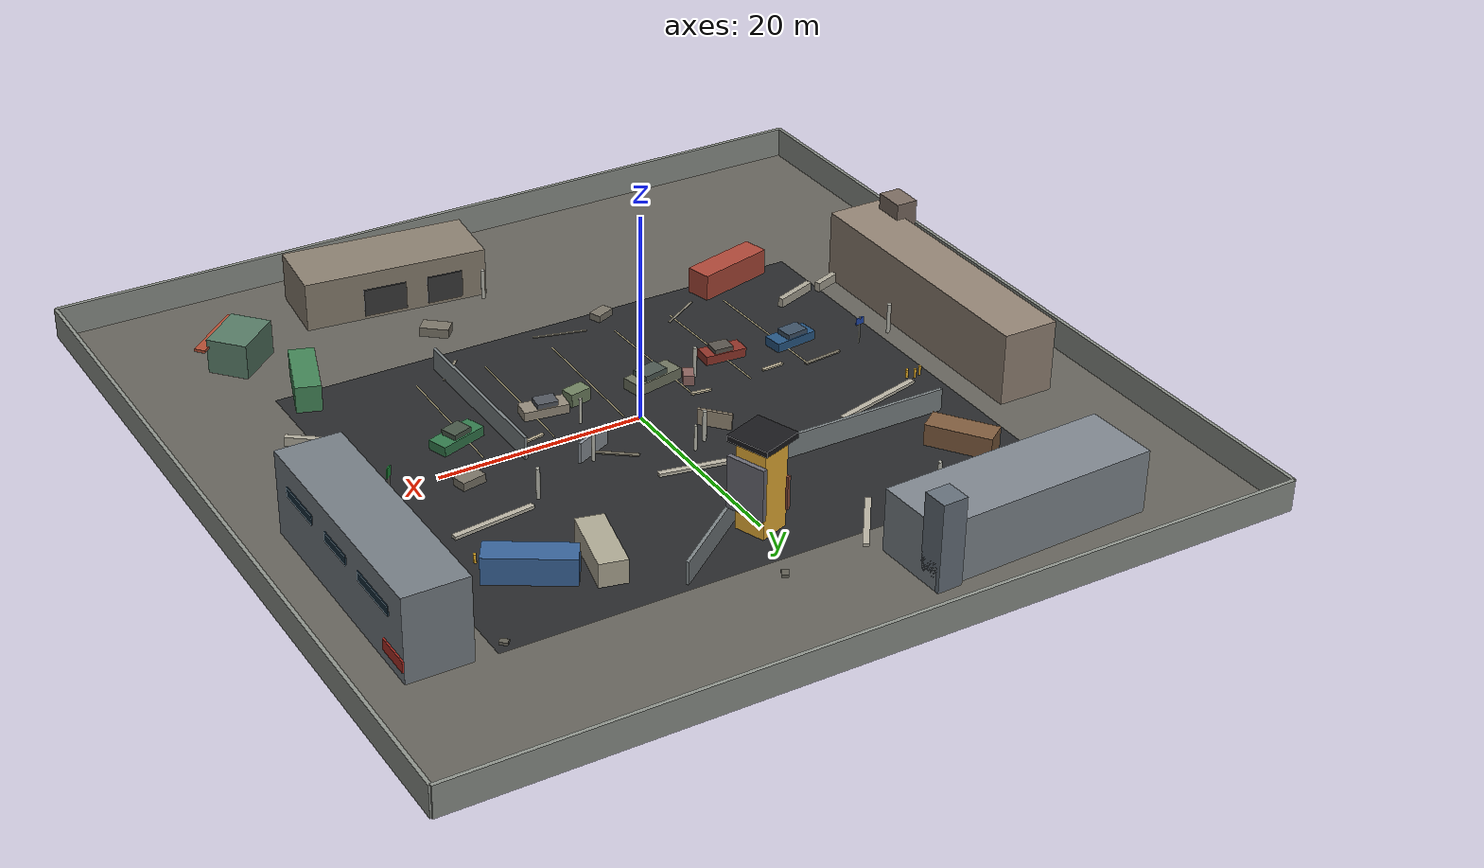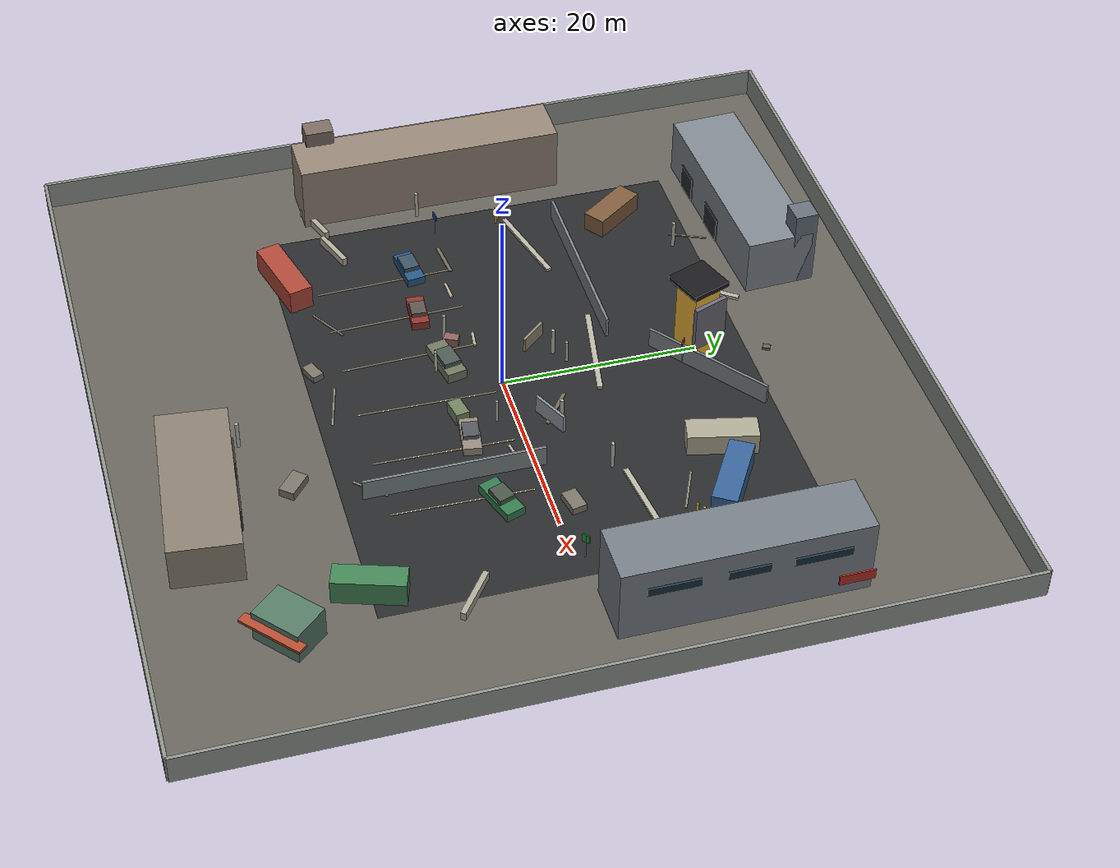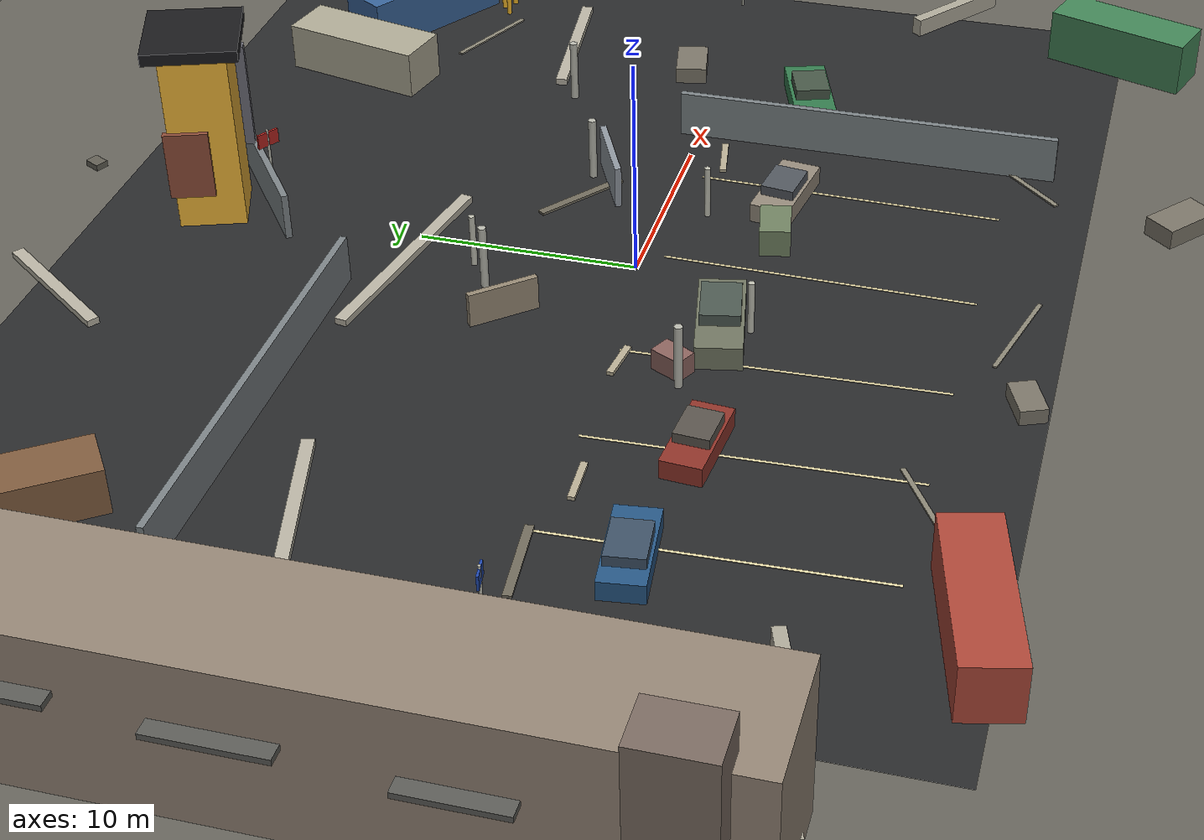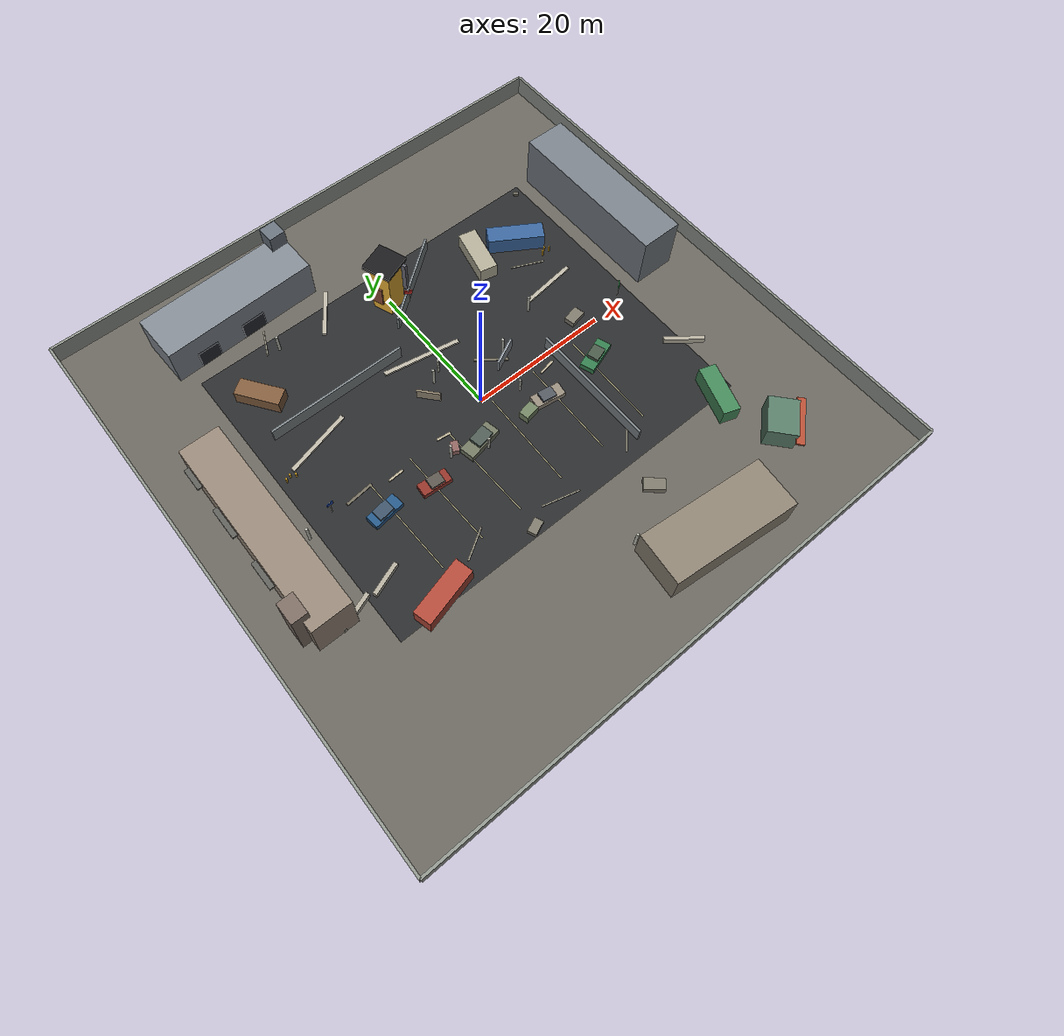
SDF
<?xml version="1.0" ?>
<sdf version="1.9">
  <world name="enhanced_lunar_test">
    <physics name="fast_stable" type="ignored">
      <max_step_size>0.004</max_step_size>
      <real_time_factor>1.0</real_time_factor>
    </physics>

    <plugin filename="gz-sim-physics-system" name="gz::sim::systems::Physics"/>
    <plugin filename="gz-sim-user-commands-system" name="gz::sim::systems::UserCommands"/>
    <plugin filename="gz-sim-scene-broadcaster-system" name="gz::sim::systems::SceneBroadcaster"/>
    <plugin filename="gz-sim-sensors-system" name="gz::sim::systems::Sensors">
      <render_engine>ogre</render_engine>
    </plugin>
    <plugin filename="gz-sim-imu-system" name="gz::sim::systems::Imu"/>

    <gravity>0 0 -9.81</gravity>

    <scene>
      <ambient>0.35 0.35 0.36 1</ambient>
      <background>0.03 0.035 0.045 1</background>
      <grid>true</grid>
      <shadows>true</shadows>
    </scene>

    <light type="directional" name="low_sun">
      <cast_shadows>true</cast_shadows>
      <pose>0 0 70 0 0 0</pose>
      <diffuse>0.78 0.76 0.72 1</diffuse>
      <specular>0.08 0.08 0.08 1</specular>
      <intensity>2.6</intensity>
      <direction>-0.55 0.25 -0.80</direction>
    </light>

    <model name="flat_lunar_test_floor">
      <static>true</static>
      <link name="floor_link">
        <collision name="floor_collision">
          <geometry>
            <box>
              <size>80 80 0.10</size>
            </box>
          </geometry>
        </collision>
        <visual name="floor_visual">
          <geometry>
            <box>
              <size>80 80 0.10</size>
            </box>
          </geometry>
          <material>
            <ambient>0.28 0.28 0.27 1</ambient>
            <diffuse>0.40 0.39 0.36 1</diffuse>
            <specular>0.015 0.015 0.015 1</specular>
          </material>
        </visual>
      </link>
      <pose>0 0 -0.05 0 0 0</pose>
    </model>

    <!-- Near-spawn asymmetric landmarks. These keep the first local map
         observable for point-to-plane scan matching instead of relying on
         distant parallel outer walls. -->
    <model name="spawn_landmark_wall_a">
      <static>true</static>
      <pose>6.5 3.0 1.0 0 0 0.45</pose>
      <link name="wall_link">
        <collision name="collision"><geometry><box><size>4.0 0.30 2.0</size></box></geometry></collision>
        <visual name="visual"><geometry><box><size>4.0 0.30 2.0</size></box></geometry>
          <material><ambient>0.34 0.36 0.38 1</ambient><diffuse>0.56 0.59 0.62 1</diffuse></material>
        </visual>
      </link>
    </model>
    <model name="spawn_landmark_wall_b">
      <static>true</static>
      <pose>-5.0 4.5 0.8 0 0 -0.85</pose>
      <link name="wall_link">
        <collision name="collision"><geometry><box><size>3.2 0.28 1.6</size></box></geometry></collision>
        <visual name="visual"><geometry><box><size>3.2 0.28 1.6</size></box></geometry>
          <material><ambient>0.36 0.34 0.31 1</ambient><diffuse>0.58 0.53 0.45 1</diffuse></material>
        </visual>
      </link>
    </model>
    <model name="spawn_landmark_box_a">
      <static>true</static>
      <pose>3.5 -5.5 0.65 0 0 0.2</pose>
      <link name="box_link">
        <collision name="collision"><geometry><box><size>2.2 1.4 1.3</size></box></geometry></collision>
        <visual name="visual"><geometry><box><size>2.2 1.4 1.3</size></box></geometry>
          <material><ambient>0.28 0.31 0.24 1</ambient><diffuse>0.44 0.51 0.38 1</diffuse></material>
        </visual>
      </link>
    </model>
    <model name="spawn_landmark_box_b">
      <static>true</static>
      <pose>-7.0 -3.5 0.50 0 0 1.1</pose>
      <link name="box_link">
        <collision name="collision"><geometry><box><size>1.5 1.0 1.0</size></box></geometry></collision>
        <visual name="visual"><geometry><box><size>1.5 1.0 1.0</size></box></geometry>
          <material><ambient>0.33 0.25 0.25 1</ambient><diffuse>0.55 0.39 0.37 1</diffuse></material>
        </visual>
      </link>
    </model>
    <model name="spawn_pole_a"><static>true</static><pose>5.0 -2.0 1.25 0 0 0</pose><link name="pole_link"><collision name="collision"><geometry><cylinder><radius>0.14</radius><length>2.5</length></cylinder></geometry></collision><visual name="visual"><geometry><cylinder><radius>0.14</radius><length>2.5</length></cylinder></geometry><material><ambient>0.45 0.45 0.42 1</ambient><diffuse>0.75 0.75 0.70 1</diffuse></material></visual></link></model>
    <model name="spawn_pole_b"><static>true</static><pose>-3.5 -6.0 1.25 0 0 0</pose><link name="pole_link"><collision name="collision"><geometry><cylinder><radius>0.14</radius><length>2.5</length></cylinder></geometry></collision><visual name="visual"><geometry><cylinder><radius>0.14</radius><length>2.5</length></cylinder></geometry><material><ambient>0.45 0.45 0.42 1</ambient><diffuse>0.75 0.75 0.70 1</diffuse></material></visual></link></model>
    <model name="spawn_pole_c"><static>true</static><pose>-1.5 7.0 1.25 0 0 0</pose><link name="pole_link"><collision name="collision"><geometry><cylinder><radius>0.14</radius><length>2.5</length></cylinder></geometry></collision><visual name="visual"><geometry><cylinder><radius>0.14</radius><length>2.5</length></cylinder></geometry><material><ambient>0.45 0.45 0.42 1</ambient><diffuse>0.75 0.75 0.70 1</diffuse></material></visual></link></model>

    <!-- Outer square walls: strong long-range constraints for LiDAR frontend testing. -->
    <model name="north_outer_wall">
      <static>true</static>
      <pose>0 40 1.5 0 0 0</pose>
      <link name="wall_link">
        <collision name="collision"><geometry><box><size>80 0.35 3.0</size></box></geometry></collision>
        <visual name="visual"><geometry><box><size>80 0.35 3.0</size></box></geometry>
          <material><ambient>0.36 0.38 0.37 1</ambient><diffuse>0.55 0.57 0.54 1</diffuse></material>
        </visual>
      </link>
    </model>
    <model name="south_outer_wall">
      <static>true</static>
      <pose>0 -40 1.5 0 0 0</pose>
      <link name="wall_link">
        <collision name="collision"><geometry><box><size>80 0.35 3.0</size></box></geometry></collision>
        <visual name="visual"><geometry><box><size>80 0.35 3.0</size></box></geometry>
          <material><ambient>0.36 0.38 0.37 1</ambient><diffuse>0.55 0.57 0.54 1</diffuse></material>
        </visual>
      </link>
    </model>
    <model name="east_outer_wall">
      <static>true</static>
      <pose>40 0 1.5 0 0 0</pose>
      <link name="wall_link">
        <collision name="collision"><geometry><box><size>0.35 80 3.0</size></box></geometry></collision>
        <visual name="visual"><geometry><box><size>0.35 80 3.0</size></box></geometry>
          <material><ambient>0.36 0.38 0.37 1</ambient><diffuse>0.55 0.57 0.54 1</diffuse></material>
        </visual>
      </link>
    </model>
    <model name="west_outer_wall">
      <static>true</static>
      <pose>-40 0 1.5 0 0 0</pose>
      <link name="wall_link">
        <collision name="collision"><geometry><box><size>0.35 80 3.0</size></box></geometry></collision>
        <visual name="visual"><geometry><box><size>0.35 80 3.0</size></box></geometry>
          <material><ambient>0.36 0.38 0.37 1</ambient><diffuse>0.55 0.57 0.54 1</diffuse></material>
        </visual>
      </link>
    </model>

    <!-- Internal walls form corridors and occlusions without boxing in the spawn area. -->
    <model name="inner_wall_a">
      <static>true</static>
      <pose>-14 12 1.1 0 0 0.0</pose>
      <link name="wall_link">
        <collision name="collision"><geometry><box><size>20 0.30 2.2</size></box></geometry></collision>
        <visual name="visual"><geometry><box><size>20 0.30 2.2</size></box></geometry>
          <material><ambient>0.33 0.35 0.36 1</ambient><diffuse>0.48 0.51 0.52 1</diffuse></material>
        </visual>
      </link>
    </model>
    <model name="inner_wall_b">
      <static>true</static>
      <pose>12 -8 1.1 0 0 1.5708</pose>
      <link name="wall_link">
        <collision name="collision"><geometry><box><size>18 0.30 2.2</size></box></geometry></collision>
        <visual name="visual"><geometry><box><size>18 0.30 2.2</size></box></geometry>
          <material><ambient>0.33 0.35 0.36 1</ambient><diffuse>0.48 0.51 0.52 1</diffuse></material>
        </visual>
      </link>
    </model>
    <model name="inner_wall_c">
      <static>true</static>
      <pose>4 20 1.1 0 0 0.65</pose>
      <link name="wall_link">
        <collision name="collision"><geometry><box><size>14 0.30 2.2</size></box></geometry></collision>
        <visual name="visual"><geometry><box><size>14 0.30 2.2</size></box></geometry>
          <material><ambient>0.33 0.35 0.36 1</ambient><diffuse>0.48 0.51 0.52 1</diffuse></material>
        </visual>
      </link>
    </model>

    <!-- Container-like boxes: asymmetric rectangular features for scan matching. -->
    <model name="container_red_01">
      <static>true</static>
      <pose>-20 -18 1.3 0 0 0.25</pose>
      <link name="container_link">
        <collision name="collision"><geometry><box><size>8.0 2.5 2.6</size></box></geometry></collision>
        <visual name="visual"><geometry><box><size>8.0 2.5 2.6</size></box></geometry>
          <material><ambient>0.42 0.18 0.15 1</ambient><diffuse>0.68 0.28 0.22 1</diffuse></material>
        </visual>
      </link>
    </model>
    <model name="container_blue_02">
      <static>true</static>
      <pose>20 17 1.3 0 0 -0.55</pose>
      <link name="container_link">
        <collision name="collision"><geometry><box><size>8.0 2.5 2.6</size></box></geometry></collision>
        <visual name="visual"><geometry><box><size>8.0 2.5 2.6</size></box></geometry>
          <material><ambient>0.14 0.24 0.36 1</ambient><diffuse>0.22 0.39 0.60 1</diffuse></material>
        </visual>
      </link>
    </model>
    <model name="container_green_03">
      <static>true</static>
      <pose>24 -19 1.3 0 0 1.25</pose>
      <link name="container_link">
        <collision name="collision"><geometry><box><size>7.0 2.4 2.6</size></box></geometry></collision>
        <visual name="visual"><geometry><box><size>7.0 2.4 2.6</size></box></geometry>
          <material><ambient>0.16 0.32 0.22 1</ambient><diffuse>0.26 0.52 0.34 1</diffuse></material>
        </visual>
      </link>
    </model>

    <!-- Pole field: thin vertical landmarks help expose yaw and lateral drift issues. -->
    <model name="pole_01"><static>true</static><pose>-8 -4 1.5 0 0 0</pose><link name="pole_link"><collision name="collision"><geometry><cylinder><radius>0.18</radius><length>3.0</length></cylinder></geometry></collision><visual name="visual"><geometry><cylinder><radius>0.18</radius><length>3.0</length></cylinder></geometry><material><ambient>0.42 0.42 0.40 1</ambient><diffuse>0.72 0.72 0.68 1</diffuse></material></visual></link></model>
    <model name="pole_02"><static>true</static><pose>-3 6 1.5 0 0 0</pose><link name="pole_link"><collision name="collision"><geometry><cylinder><radius>0.18</radius><length>3.0</length></cylinder></geometry></collision><visual name="visual"><geometry><cylinder><radius>0.18</radius><length>3.0</length></cylinder></geometry><material><ambient>0.42 0.42 0.40 1</ambient><diffuse>0.72 0.72 0.68 1</diffuse></material></visual></link></model>
    <model name="pole_03"><static>true</static><pose>7 4 1.5 0 0 0</pose><link name="pole_link"><collision name="collision"><geometry><cylinder><radius>0.18</radius><length>3.0</length></cylinder></geometry></collision><visual name="visual"><geometry><cylinder><radius>0.18</radius><length>3.0</length></cylinder></geometry><material><ambient>0.42 0.42 0.40 1</ambient><diffuse>0.72 0.72 0.68 1</diffuse></material></visual></link></model>
    <model name="pole_04"><static>true</static><pose>14 7 1.5 0 0 0</pose><link name="pole_link"><collision name="collision"><geometry><cylinder><radius>0.18</radius><length>3.0</length></cylinder></geometry></collision><visual name="visual"><geometry><cylinder><radius>0.18</radius><length>3.0</length></cylinder></geometry><material><ambient>0.42 0.42 0.40 1</ambient><diffuse>0.72 0.72 0.68 1</diffuse></material></visual></link></model>
    <model name="pole_05"><static>true</static><pose>-16 23 1.5 0 0 0</pose><link name="pole_link"><collision name="collision"><geometry><cylinder><radius>0.18</radius><length>3.0</length></cylinder></geometry></collision><visual name="visual"><geometry><cylinder><radius>0.18</radius><length>3.0</length></cylinder></geometry><material><ambient>0.42 0.42 0.40 1</ambient><diffuse>0.72 0.72 0.68 1</diffuse></material></visual></link></model>
    <model name="pole_06"><static>true</static><pose>30 6 1.5 0 0 0</pose><link name="pole_link"><collision name="collision"><geometry><cylinder><radius>0.18</radius><length>3.0</length></cylinder></geometry></collision><visual name="visual"><geometry><cylinder><radius>0.18</radius><length>3.0</length></cylinder></geometry><material><ambient>0.42 0.42 0.40 1</ambient><diffuse>0.72 0.72 0.68 1</diffuse></material></visual></link></model>
    <model name="pole_07"><static>true</static><pose>-28 -2 1.5 0 0 0</pose><link name="pole_link"><collision name="collision"><geometry><cylinder><radius>0.18</radius><length>3.0</length></cylinder></geometry></collision><visual name="visual"><geometry><cylinder><radius>0.18</radius><length>3.0</length></cylinder></geometry><material><ambient>0.42 0.42 0.40 1</ambient><diffuse>0.72 0.72 0.68 1</diffuse></material></visual></link></model>
    <model name="pole_08"><static>true</static><pose>2 -27 1.5 0 0 0</pose><link name="pole_link"><collision name="collision"><geometry><cylinder><radius>0.18</radius><length>3.0</length></cylinder></geometry></collision><visual name="visual"><geometry><cylinder><radius>0.18</radius><length>3.0</length></cylinder></geometry><material><ambient>0.42 0.42 0.40 1</ambient><diffuse>0.72 0.72 0.68 1</diffuse></material></visual></link></model>

    <!-- Parking-lot test section: dense, asymmetric, non-repeating geometry for LIO frontends.
         Cars, signs, bollards, curbs, and barriers add vertical edges at many ranges. -->
    <model name="parking_lot_pad">
      <static>true</static>
      <pose>0 3 0.006 0 0 0</pose>
      <link name="pad_link">
        <visual name="visual">
          <geometry><box><size>54 44 0.012</size></box></geometry>
          <material><ambient>0.10 0.105 0.11 1</ambient><diffuse>0.16 0.165 0.17 1</diffuse><specular>0.01 0.01 0.01 1</specular></material>
        </visual>
      </link>
    </model>

    <model name="parking_lane_marker_01"><static>true</static><pose>-18 -8 0.035 0 0 0.03</pose><link name="mark_link"><collision name="collision"><geometry><box><size>0.12 14.0 0.03</size></box></geometry></collision><visual name="visual"><geometry><box><size>0.12 14.0 0.03</size></box></geometry><material><ambient>0.90 0.86 0.65 1</ambient><diffuse>0.95 0.90 0.70 1</diffuse></material></visual></link></model>
    <model name="parking_lane_marker_02"><static>true</static><pose>-12 -8 0.035 0 0 0.03</pose><link name="mark_link"><collision name="collision"><geometry><box><size>0.12 14.0 0.03</size></box></geometry></collision><visual name="visual"><geometry><box><size>0.12 14.0 0.03</size></box></geometry><material><ambient>0.90 0.86 0.65 1</ambient><diffuse>0.95 0.90 0.70 1</diffuse></material></visual></link></model>
    <model name="parking_lane_marker_03"><static>true</static><pose>-6 -8 0.035 0 0 0.03</pose><link name="mark_link"><collision name="collision"><geometry><box><size>0.12 14.0 0.03</size></box></geometry></collision><visual name="visual"><geometry><box><size>0.12 14.0 0.03</size></box></geometry><material><ambient>0.90 0.86 0.65 1</ambient><diffuse>0.95 0.90 0.70 1</diffuse></material></visual></link></model>
    <model name="parking_lane_marker_04"><static>true</static><pose>1 -8 0.035 0 0 -0.02</pose><link name="mark_link"><collision name="collision"><geometry><box><size>0.12 14.0 0.03</size></box></geometry></collision><visual name="visual"><geometry><box><size>0.12 14.0 0.03</size></box></geometry><material><ambient>0.90 0.86 0.65 1</ambient><diffuse>0.95 0.90 0.70 1</diffuse></material></visual></link></model>
    <model name="parking_lane_marker_05"><static>true</static><pose>8 -8 0.035 0 0 -0.02</pose><link name="mark_link"><collision name="collision"><geometry><box><size>0.12 14.0 0.03</size></box></geometry></collision><visual name="visual"><geometry><box><size>0.12 14.0 0.03</size></box></geometry><material><ambient>0.90 0.86 0.65 1</ambient><diffuse>0.95 0.90 0.70 1</diffuse></material></visual></link></model>
    <model name="parking_lane_marker_06"><static>true</static><pose>15 -8 0.035 0 0 -0.02</pose><link name="mark_link"><collision name="collision"><geometry><box><size>0.12 14.0 0.03</size></box></geometry></collision><visual name="visual"><geometry><box><size>0.12 14.0 0.03</size></box></geometry><material><ambient>0.90 0.86 0.65 1</ambient><diffuse>0.95 0.90 0.70 1</diffuse></material></visual></link></model>

    <model name="parking_curb_island_01"><static>true</static><pose>-20 8 0.16 0 0 0.25</pose><link name="curb_link"><collision name="collision"><geometry><box><size>9.5 0.55 0.32</size></box></geometry></collision><visual name="visual"><geometry><box><size>9.5 0.55 0.32</size></box></geometry><material><ambient>0.52 0.50 0.46 1</ambient><diffuse>0.72 0.70 0.64 1</diffuse></material></visual></link></model>
    <model name="parking_curb_island_02"><static>true</static><pose>-2 10 0.16 0 0 -0.18</pose><link name="curb_link"><collision name="collision"><geometry><box><size>11.0 0.55 0.32</size></box></geometry></collision><visual name="visual"><geometry><box><size>11.0 0.55 0.32</size></box></geometry><material><ambient>0.52 0.50 0.46 1</ambient><diffuse>0.72 0.70 0.64 1</diffuse></material></visual></link></model>
    <model name="parking_curb_island_03"><static>true</static><pose>19 8.5 0.16 0 0 0.12</pose><link name="curb_link"><collision name="collision"><geometry><box><size>8.0 0.55 0.32</size></box></geometry></collision><visual name="visual"><geometry><box><size>8.0 0.55 0.32</size></box></geometry><material><ambient>0.52 0.50 0.46 1</ambient><diffuse>0.72 0.70 0.64 1</diffuse></material></visual></link></model>
    <model name="parking_curb_island_04"><static>true</static><pose>-8 24 0.16 0 0 0.95</pose><link name="curb_link"><collision name="collision"><geometry><box><size>7.0 0.55 0.32</size></box></geometry></collision><visual name="visual"><geometry><box><size>7.0 0.55 0.32</size></box></geometry><material><ambient>0.52 0.50 0.46 1</ambient><diffuse>0.72 0.70 0.64 1</diffuse></material></visual></link></model>

    <model name="parked_car_01">
      <static>true</static><pose>-19 -5 0.45 0 0 0.12</pose>
      <link name="body"><collision name="collision"><geometry><box><size>4.4 1.9 0.9</size></box></geometry></collision><visual name="visual"><geometry><box><size>4.4 1.9 0.9</size></box></geometry><material><ambient>0.10 0.22 0.34 1</ambient><diffuse>0.15 0.34 0.52 1</diffuse></material></visual></link>
      <link name="cab"><pose>-0.2 0 0.55 0 0 0</pose><collision name="collision"><geometry><box><size>2.2 1.65 0.75</size></box></geometry></collision><visual name="visual"><geometry><box><size>2.2 1.65 0.75</size></box></geometry><material><ambient>0.16 0.22 0.28 1</ambient><diffuse>0.24 0.32 0.40 1</diffuse></material></visual></link>
    </model>
    <model name="parked_car_02">
      <static>true</static><pose>-12 -5.8 0.45 0 0 -0.08</pose>
      <link name="body"><collision name="collision"><geometry><box><size>4.1 1.8 0.9</size></box></geometry></collision><visual name="visual"><geometry><box><size>4.1 1.8 0.9</size></box></geometry><material><ambient>0.34 0.12 0.10 1</ambient><diffuse>0.56 0.20 0.16 1</diffuse></material></visual></link>
      <link name="cab"><pose>0.15 0 0.55 0 0 0</pose><collision name="collision"><geometry><box><size>1.9 1.55 0.70</size></box></geometry></collision><visual name="visual"><geometry><box><size>1.9 1.55 0.70</size></box></geometry><material><ambient>0.24 0.22 0.20 1</ambient><diffuse>0.35 0.33 0.30 1</diffuse></material></visual></link>
    </model>
    <model name="parked_car_03">
      <static>true</static><pose>-4 -4.8 0.55 0 0 0.20</pose>
      <link name="body"><collision name="collision"><geometry><box><size>5.1 2.05 1.1</size></box></geometry></collision><visual name="visual"><geometry><box><size>5.1 2.05 1.1</size></box></geometry><material><ambient>0.28 0.29 0.24 1</ambient><diffuse>0.44 0.46 0.38 1</diffuse></material></visual></link>
      <link name="cab"><pose>0.3 0 0.68 0 0 0</pose><collision name="collision"><geometry><box><size>2.5 1.75 0.80</size></box></geometry></collision><visual name="visual"><geometry><box><size>2.5 1.75 0.80</size></box></geometry><material><ambient>0.20 0.24 0.22 1</ambient><diffuse>0.30 0.35 0.32 1</diffuse></material></visual></link>
    </model>
    <model name="parked_car_04">
      <static>true</static><pose>7 -5.2 0.45 0 0 -0.14</pose>
      <link name="body"><collision name="collision"><geometry><box><size>4.3 1.85 0.9</size></box></geometry></collision><visual name="visual"><geometry><box><size>4.3 1.85 0.9</size></box></geometry><material><ambient>0.36 0.34 0.30 1</ambient><diffuse>0.58 0.54 0.48 1</diffuse></material></visual></link>
      <link name="cab"><pose>-0.15 0 0.56 0 0 0</pose><collision name="collision"><geometry><box><size>2.0 1.55 0.70</size></box></geometry></collision><visual name="visual"><geometry><box><size>2.0 1.55 0.70</size></box></geometry><material><ambient>0.22 0.23 0.25 1</ambient><diffuse>0.32 0.34 0.37 1</diffuse></material></visual></link>
    </model>
    <model name="parked_car_05">
      <static>true</static><pose>16 -4.5 0.48 0 0 0.33</pose>
      <link name="body"><collision name="collision"><geometry><box><size>4.8 2.0 0.95</size></box></geometry></collision><visual name="visual"><geometry><box><size>4.8 2.0 0.95</size></box></geometry><material><ambient>0.12 0.28 0.18 1</ambient><diffuse>0.20 0.48 0.30 1</diffuse></material></visual></link>
      <link name="cab"><pose>0.0 0 0.62 0 0 0</pose><collision name="collision"><geometry><box><size>2.0 1.65 0.74</size></box></geometry></collision><visual name="visual"><geometry><box><size>2.0 1.65 0.74</size></box></geometry><material><ambient>0.18 0.22 0.18 1</ambient><diffuse>0.28 0.34 0.28 1</diffuse></material></visual></link>
    </model>

    <model name="box_truck_01">
      <static>true</static><pose>14 18 1.15 0 0 1.35</pose>
      <link name="truck_link"><collision name="collision"><geometry><box><size>7.0 2.6 2.3</size></box></geometry></collision><visual name="visual"><geometry><box><size>7.0 2.6 2.3</size></box></geometry><material><ambient>0.40 0.40 0.36 1</ambient><diffuse>0.68 0.66 0.58 1</diffuse></material></visual></link>
    </model>
    <model name="box_truck_02">
      <static>true</static><pose>-22 18 1.05 0 0 -0.95</pose>
      <link name="truck_link"><collision name="collision"><geometry><box><size>6.2 2.4 2.1</size></box></geometry></collision><visual name="visual"><geometry><box><size>6.2 2.4 2.1</size></box></geometry><material><ambient>0.30 0.22 0.16 1</ambient><diffuse>0.50 0.36 0.24 1</diffuse></material></visual></link>
    </model>

    <model name="parking_sign_01"><static>true</static><pose>-24 -1 1.85 0 0 0.15</pose><link name="post"><collision name="collision"><geometry><cylinder><radius>0.06</radius><length>2.8</length></cylinder></geometry></collision><visual name="visual"><geometry><cylinder><radius>0.06</radius><length>2.8</length></cylinder></geometry><material><ambient>0.45 0.45 0.43 1</ambient><diffuse>0.75 0.75 0.70 1</diffuse></material></visual></link><link name="sign"><pose>0 0 0.95 0 0 0</pose><collision name="collision"><geometry><box><size>0.90 0.10 0.65</size></box></geometry></collision><visual name="visual"><geometry><box><size>0.90 0.10 0.65</size></box></geometry><material><ambient>0.08 0.18 0.42 1</ambient><diffuse>0.12 0.28 0.68 1</diffuse></material></visual></link></model>
    <model name="parking_sign_02"><static>true</static><pose>2 18 1.85 0 0 -0.55</pose><link name="post"><collision name="collision"><geometry><cylinder><radius>0.06</radius><length>2.8</length></cylinder></geometry></collision><visual name="visual"><geometry><cylinder><radius>0.06</radius><length>2.8</length></cylinder></geometry><material><ambient>0.45 0.45 0.43 1</ambient><diffuse>0.75 0.75 0.70 1</diffuse></material></visual></link><link name="sign"><pose>0 0 0.95 0 0 0</pose><collision name="collision"><geometry><box><size>1.1 0.10 0.70</size></box></geometry></collision><visual name="visual"><geometry><box><size>1.1 0.10 0.70</size></box></geometry><material><ambient>0.36 0.08 0.06 1</ambient><diffuse>0.70 0.14 0.12 1</diffuse></material></visual></link></model>
    <model name="parking_sign_03"><static>true</static><pose>25 1 1.85 0 0 0.75</pose><link name="post"><collision name="collision"><geometry><cylinder><radius>0.06</radius><length>2.8</length></cylinder></geometry></collision><visual name="visual"><geometry><cylinder><radius>0.06</radius><length>2.8</length></cylinder></geometry><material><ambient>0.45 0.45 0.43 1</ambient><diffuse>0.75 0.75 0.70 1</diffuse></material></visual></link><link name="sign"><pose>0 0 0.95 0 0 0</pose><collision name="collision"><geometry><box><size>0.80 0.10 0.95</size></box></geometry></collision><visual name="visual"><geometry><box><size>0.80 0.10 0.95</size></box></geometry><material><ambient>0.06 0.30 0.12 1</ambient><diffuse>0.12 0.58 0.24 1</diffuse></material></visual></link></model>

    <model name="visual_check_clocktower_near_lot">
      <static>true</static>
      <pose>0 20 4.25 0 0 0.35</pose>
      <link name="tower_body">
        <collision name="collision"><geometry><box><size>3.0 3.0 8.5</size></box></geometry></collision>
        <visual name="visual"><geometry><box><size>3.0 3.0 8.5</size></box></geometry>
          <material><ambient>0.55 0.42 0.12 1</ambient><diffuse>0.95 0.72 0.22 1</diffuse><specular>0.02 0.02 0.02 1</specular></material>
        </visual>
      </link>
      <link name="dark_cap"><pose>0 0 4.55 0 0 0</pose><collision name="collision"><geometry><box><size>4.2 4.2 0.55</size></box></geometry></collision><visual name="visual"><geometry><box><size>4.2 4.2 0.55</size></box></geometry><material><ambient>0.05 0.05 0.055 1</ambient><diffuse>0.10 0.10 0.11 1</diffuse></material></visual></link>
      <link name="side_fin_a"><pose>2.0 0 0.5 0 0 0</pose><collision name="collision"><geometry><box><size>0.45 3.8 5.0</size></box></geometry></collision><visual name="visual"><geometry><box><size>0.45 3.8 5.0</size></box></geometry><material><ambient>0.24 0.24 0.26 1</ambient><diffuse>0.42 0.42 0.46 1</diffuse></material></visual></link>
      <link name="side_fin_b"><pose>-1.55 0.7 -1.0 0 0 0</pose><collision name="collision"><geometry><box><size>0.35 2.0 3.2</size></box></geometry></collision><visual name="visual"><geometry><box><size>0.35 2.0 3.2</size></box></geometry><material><ambient>0.30 0.18 0.14 1</ambient><diffuse>0.55 0.30 0.22 1</diffuse></material></visual></link>
    </model>

    <model name="bollard_cluster_01"><static>true</static><pose>-26 6 0 0 0 0</pose><link name="b1"><pose>0 0 0.45 0 0 0</pose><collision name="collision"><geometry><cylinder><radius>0.12</radius><length>0.9</length></cylinder></geometry></collision><visual name="visual"><geometry><cylinder><radius>0.12</radius><length>0.9</length></cylinder></geometry><material><ambient>0.75 0.55 0.10 1</ambient><diffuse>0.95 0.72 0.16 1</diffuse></material></visual></link><link name="b2"><pose>0.7 0.25 0.45 0 0 0</pose><collision name="collision"><geometry><cylinder><radius>0.12</radius><length>0.9</length></cylinder></geometry></collision><visual name="visual"><geometry><cylinder><radius>0.12</radius><length>0.9</length></cylinder></geometry><material><ambient>0.75 0.55 0.10 1</ambient><diffuse>0.95 0.72 0.16 1</diffuse></material></visual></link><link name="b3"><pose>1.35 -0.1 0.45 0 0 0</pose><collision name="collision"><geometry><cylinder><radius>0.12</radius><length>0.9</length></cylinder></geometry></collision><visual name="visual"><geometry><cylinder><radius>0.12</radius><length>0.9</length></cylinder></geometry><material><ambient>0.75 0.55 0.10 1</ambient><diffuse>0.95 0.72 0.16 1</diffuse></material></visual></link></model>
    <model name="bollard_cluster_02"><static>true</static><pose>23 13 0 0 0 0</pose><link name="b1"><pose>0 0 0.45 0 0 0</pose><collision name="collision"><geometry><cylinder><radius>0.12</radius><length>0.9</length></cylinder></geometry></collision><visual name="visual"><geometry><cylinder><radius>0.12</radius><length>0.9</length></cylinder></geometry><material><ambient>0.75 0.55 0.10 1</ambient><diffuse>0.95 0.72 0.16 1</diffuse></material></visual></link><link name="b2"><pose>-0.6 0.4 0.45 0 0 0</pose><collision name="collision"><geometry><cylinder><radius>0.12</radius><length>0.9</length></cylinder></geometry></collision><visual name="visual"><geometry><cylinder><radius>0.12</radius><length>0.9</length></cylinder></geometry><material><ambient>0.75 0.55 0.10 1</ambient><diffuse>0.95 0.72 0.16 1</diffuse></material></visual></link><link name="b3"><pose>-1.2 -0.05 0.45 0 0 0</pose><collision name="collision"><geometry><cylinder><radius>0.12</radius><length>0.9</length></cylinder></geometry></collision><visual name="visual"><geometry><cylinder><radius>0.12</radius><length>0.9</length></cylinder></geometry><material><ambient>0.75 0.55 0.10 1</ambient><diffuse>0.95 0.72 0.16 1</diffuse></material></visual></link></model>

    <model name="jersey_barrier_01"><static>true</static><pose>-29 -13 0.45 0 0 0.35</pose><link name="barrier_link"><collision name="collision"><geometry><box><size>5.0 0.55 0.9</size></box></geometry></collision><visual name="visual"><geometry><box><size>5.0 0.55 0.9</size></box></geometry><material><ambient>0.46 0.45 0.42 1</ambient><diffuse>0.68 0.66 0.60 1</diffuse></material></visual></link></model>
    <model name="jersey_barrier_02"><static>true</static><pose>-24 -12 0.45 0 0 0.35</pose><link name="barrier_link"><collision name="collision"><geometry><box><size>4.5 0.55 0.9</size></box></geometry></collision><visual name="visual"><geometry><box><size>4.5 0.55 0.9</size></box></geometry><material><ambient>0.46 0.45 0.42 1</ambient><diffuse>0.68 0.66 0.60 1</diffuse></material></visual></link></model>
    <model name="jersey_barrier_03"><static>true</static><pose>27 -10 0.45 0 0 -0.65</pose><link name="barrier_link"><collision name="collision"><geometry><box><size>5.5 0.55 0.9</size></box></geometry></collision><visual name="visual"><geometry><box><size>5.5 0.55 0.9</size></box></geometry><material><ambient>0.46 0.45 0.42 1</ambient><diffuse>0.68 0.66 0.60 1</diffuse></material></visual></link></model>

    <!-- LiDAR-visible ground texture. These are physical low ridges/stops, not just painted visuals. -->
    <model name="ground_ridge_01"><static>true</static><pose>-13 -15 0.045 0 0 0.55</pose><link name="ridge_link"><collision name="collision"><geometry><box><size>4.5 0.22 0.09</size></box></geometry></collision><visual name="visual"><geometry><box><size>4.5 0.22 0.09</size></box></geometry><material><ambient>0.36 0.35 0.31 1</ambient><diffuse>0.54 0.52 0.46 1</diffuse></material></visual></link></model>
    <model name="ground_ridge_02"><static>true</static><pose>-1 -17 0.045 0 0 -0.25</pose><link name="ridge_link"><collision name="collision"><geometry><box><size>5.2 0.20 0.09</size></box></geometry></collision><visual name="visual"><geometry><box><size>5.2 0.20 0.09</size></box></geometry><material><ambient>0.36 0.35 0.31 1</ambient><diffuse>0.54 0.52 0.46 1</diffuse></material></visual></link></model>
    <model name="ground_ridge_03"><static>true</static><pose>11 -16 0.045 0 0 0.82</pose><link name="ridge_link"><collision name="collision"><geometry><box><size>3.8 0.24 0.09</size></box></geometry></collision><visual name="visual"><geometry><box><size>3.8 0.24 0.09</size></box></geometry><material><ambient>0.36 0.35 0.31 1</ambient><diffuse>0.54 0.52 0.46 1</diffuse></material></visual></link></model>
    <model name="ground_ridge_04"><static>true</static><pose>19 13 0.045 0 0 -0.42</pose><link name="ridge_link"><collision name="collision"><geometry><box><size>4.8 0.22 0.09</size></box></geometry></collision><visual name="visual"><geometry><box><size>4.8 0.22 0.09</size></box></geometry><material><ambient>0.36 0.35 0.31 1</ambient><diffuse>0.54 0.52 0.46 1</diffuse></material></visual></link></model>
    <model name="ground_ridge_05"><static>true</static><pose>-17 25 0.045 0 0 1.15</pose><link name="ridge_link"><collision name="collision"><geometry><box><size>4.0 0.20 0.09</size></box></geometry></collision><visual name="visual"><geometry><box><size>4.0 0.20 0.09</size></box></geometry><material><ambient>0.36 0.35 0.31 1</ambient><diffuse>0.54 0.52 0.46 1</diffuse></material></visual></link></model>
    <model name="speed_bump_01"><static>true</static><pose>-20 -1 0.065 0 0 0.10</pose><link name="bump_link"><collision name="collision"><geometry><box><size>4.0 0.38 0.13</size></box></geometry></collision><visual name="visual"><geometry><box><size>4.0 0.38 0.13</size></box></geometry><material><ambient>0.28 0.27 0.23 1</ambient><diffuse>0.44 0.42 0.36 1</diffuse></material></visual></link></model>
    <model name="speed_bump_02"><static>true</static><pose>5 4 0.065 0 0 -0.65</pose><link name="bump_link"><collision name="collision"><geometry><box><size>4.6 0.38 0.13</size></box></geometry></collision><visual name="visual"><geometry><box><size>4.6 0.38 0.13</size></box></geometry><material><ambient>0.28 0.27 0.23 1</ambient><diffuse>0.44 0.42 0.36 1</diffuse></material></visual></link></model>
    <model name="parking_stop_01"><static>true</static><pose>-15 -1.8 0.09 0 0 0.05</pose><link name="stop_link"><collision name="collision"><geometry><box><size>2.2 0.30 0.18</size></box></geometry></collision><visual name="visual"><geometry><box><size>2.2 0.30 0.18</size></box></geometry><material><ambient>0.50 0.48 0.42 1</ambient><diffuse>0.72 0.68 0.58 1</diffuse></material></visual></link></model>
    <model name="parking_stop_02"><static>true</static><pose>-7 -1.2 0.09 0 0 -0.12</pose><link name="stop_link"><collision name="collision"><geometry><box><size>2.0 0.30 0.18</size></box></geometry></collision><visual name="visual"><geometry><box><size>2.0 0.30 0.18</size></box></geometry><material><ambient>0.50 0.48 0.42 1</ambient><diffuse>0.72 0.68 0.58 1</diffuse></material></visual></link></model>
    <model name="parking_stop_03"><static>true</static><pose>10 -1.6 0.09 0 0 0.18</pose><link name="stop_link"><collision name="collision"><geometry><box><size>2.4 0.30 0.18</size></box></geometry></collision><visual name="visual"><geometry><box><size>2.4 0.30 0.18</size></box></geometry><material><ambient>0.50 0.48 0.42 1</ambient><diffuse>0.72 0.68 0.58 1</diffuse></material></visual></link></model>
    <model name="ground_rock_01"><static>true</static><pose>-24 28 0.16 0 0 0.40</pose><link name="rock_link"><collision name="collision"><geometry><box><size>0.9 0.65 0.32</size></box></geometry></collision><visual name="visual"><geometry><box><size>0.9 0.65 0.32</size></box></geometry><material><ambient>0.24 0.24 0.22 1</ambient><diffuse>0.38 0.37 0.33 1</diffuse></material></visual></link></model>
    <model name="ground_rock_02"><static>true</static><pose>26 24 0.14 0 0 -0.70</pose><link name="rock_link"><collision name="collision"><geometry><box><size>0.75 0.55 0.28</size></box></geometry></collision><visual name="visual"><geometry><box><size>0.75 0.55 0.28</size></box></geometry><material><ambient>0.24 0.24 0.22 1</ambient><diffuse>0.38 0.37 0.33 1</diffuse></material></visual></link></model>
    <model name="ground_rock_03"><static>true</static><pose>2 27 0.15 0 0 1.10</pose><link name="rock_link"><collision name="collision"><geometry><box><size>0.8 0.62 0.30</size></box></geometry></collision><visual name="visual"><geometry><box><size>0.8 0.62 0.30</size></box></geometry><material><ambient>0.24 0.24 0.22 1</ambient><diffuse>0.38 0.37 0.33 1</diffuse></material></visual></link></model>

    <!-- Low blocks add near-field geometric texture without becoming impassable walls. -->
    <model name="low_block_01"><static>true</static><pose>-6 -18 0.35 0 0 0.4</pose><link name="block_link"><collision name="collision"><geometry><box><size>2.0 1.2 0.7</size></box></geometry></collision><visual name="visual"><geometry><box><size>2.0 1.2 0.7</size></box></geometry><material><ambient>0.31 0.30 0.28 1</ambient><diffuse>0.48 0.46 0.41 1</diffuse></material></visual></link></model>
    <model name="low_block_02"><static>true</static><pose>9 -23 0.45 0 0 -0.7</pose><link name="block_link"><collision name="collision"><geometry><box><size>2.8 1.6 0.9</size></box></geometry></collision><visual name="visual"><geometry><box><size>2.8 1.6 0.9</size></box></geometry><material><ambient>0.31 0.30 0.28 1</ambient><diffuse>0.48 0.46 0.41 1</diffuse></material></visual></link></model>
    <model name="low_block_03"><static>true</static><pose>18 2 0.40 0 0 0.2</pose><link name="block_link"><collision name="collision"><geometry><box><size>2.4 1.5 0.8</size></box></geometry></collision><visual name="visual"><geometry><box><size>2.4 1.5 0.8</size></box></geometry><material><ambient>0.31 0.30 0.28 1</ambient><diffuse>0.48 0.46 0.41 1</diffuse></material></visual></link></model>

    <model name="north_warehouse_block">
      <static>true</static>
      <pose>-18 31 3.0 0 0 0.04</pose>
      <link name="main_mass">
        <collision name="collision"><geometry><box><size>22 7 6.0</size></box></geometry></collision>
        <visual name="visual"><geometry><box><size>22 7 6.0</size></box></geometry>
          <material><ambient>0.30 0.32 0.34 1</ambient><diffuse>0.50 0.53 0.56 1</diffuse><specular>0.02 0.02 0.02 1</specular></material>
        </visual>
      </link>
      <link name="loading_bay_01"><pose>-6 -3.65 -1.35 0 0 0</pose><collision name="collision"><geometry><box><size>3.0 0.18 2.7</size></box></geometry></collision><visual name="visual"><geometry><box><size>3.0 0.18 2.7</size></box></geometry><material><ambient>0.08 0.09 0.10 1</ambient><diffuse>0.15 0.16 0.18 1</diffuse></material></visual></link>
      <link name="loading_bay_02"><pose>1 -3.65 -1.35 0 0 0</pose><collision name="collision"><geometry><box><size>3.4 0.18 2.7</size></box></geometry></collision><visual name="visual"><geometry><box><size>3.4 0.18 2.7</size></box></geometry><material><ambient>0.08 0.09 0.10 1</ambient><diffuse>0.15 0.16 0.18 1</diffuse></material></visual></link>
      <link name="corner_tower"><pose>9.8 2.7 1.2 0 0 0</pose><collision name="collision"><geometry><box><size>2.4 2.4 8.4</size></box></geometry></collision><visual name="visual"><geometry><box><size>2.4 2.4 8.4</size></box></geometry><material><ambient>0.24 0.26 0.29 1</ambient><diffuse>0.40 0.44 0.48 1</diffuse></material></visual></link>
    </model>

    <model name="east_office_block">
      <static>true</static>
      <pose>32 13 4.0 0 0 1.5708</pose>
      <link name="main_mass">
        <collision name="collision"><geometry><box><size>24 6 8.0</size></box></geometry></collision>
        <visual name="visual"><geometry><box><size>24 6 8.0</size></box></geometry>
          <material><ambient>0.27 0.29 0.31 1</ambient><diffuse>0.46 0.49 0.52 1</diffuse><specular>0.025 0.025 0.025 1</specular></material>
        </visual>
      </link>
      <link name="window_band_01"><pose>-7 -3.08 1.5 0 0 0</pose><visual name="visual"><geometry><box><size>5.0 0.12 0.9</size></box></geometry><material><ambient>0.05 0.10 0.14 1</ambient><diffuse>0.08 0.17 0.23 1</diffuse></material></visual></link>
      <link name="window_band_02"><pose>0 -3.08 1.5 0 0 0</pose><visual name="visual"><geometry><box><size>4.0 0.12 0.9</size></box></geometry><material><ambient>0.05 0.10 0.14 1</ambient><diffuse>0.08 0.17 0.23 1</diffuse></material></visual></link>
      <link name="window_band_03"><pose>7 -3.08 1.5 0 0 0</pose><visual name="visual"><geometry><box><size>5.5 0.12 0.9</size></box></geometry><material><ambient>0.05 0.10 0.14 1</ambient><diffuse>0.08 0.17 0.23 1</diffuse></material></visual></link>
      <link name="side_sign"><pose>10.5 -3.18 -2.1 0 0 0</pose><collision name="collision"><geometry><box><size>3.5 0.16 1.1</size></box></geometry></collision><visual name="visual"><geometry><box><size>3.5 0.16 1.1</size></box></geometry><material><ambient>0.38 0.10 0.08 1</ambient><diffuse>0.70 0.18 0.14 1</diffuse></material></visual></link>
    </model>

    <model name="south_service_garage">
      <static>true</static>
      <pose>10 -32 2.4 0 0 -0.10</pose>
      <link name="main_mass">
        <collision name="collision"><geometry><box><size>18 7 4.8</size></box></geometry></collision>
        <visual name="visual"><geometry><box><size>18 7 4.8</size></box></geometry>
          <material><ambient>0.32 0.30 0.27 1</ambient><diffuse>0.54 0.50 0.44 1</diffuse></material>
        </visual>
      </link>
      <link name="garage_door_01"><pose>-4.8 3.62 -0.65 0 0 0</pose><collision name="collision"><geometry><box><size>3.5 0.18 2.7</size></box></geometry></collision><visual name="visual"><geometry><box><size>3.5 0.18 2.7</size></box></geometry><material><ambient>0.12 0.12 0.12 1</ambient><diffuse>0.22 0.22 0.22 1</diffuse></material></visual></link>
      <link name="garage_door_02"><pose>1.2 3.62 -0.65 0 0 0</pose><collision name="collision"><geometry><box><size>4.2 0.18 2.7</size></box></geometry></collision><visual name="visual"><geometry><box><size>4.2 0.18 2.7</size></box></geometry><material><ambient>0.12 0.12 0.12 1</ambient><diffuse>0.22 0.22 0.22 1</diffuse></material></visual></link>
      <link name="roof_box"><pose>6.5 -1.8 1.0 0 0 0</pose><collision name="collision"><geometry><box><size>3.2 2.5 2.0</size></box></geometry></collision><visual name="visual"><geometry><box><size>3.2 2.5 2.0</size></box></geometry><material><ambient>0.25 0.24 0.22 1</ambient><diffuse>0.42 0.40 0.36 1</diffuse></material></visual></link>
    </model>

    <model name="west_apartment_row">
      <static>true</static>
      <pose>-32 0 3.5 0 0 1.5708</pose>
      <link name="main_mass">
        <collision name="collision"><geometry><box><size>28 5.5 7.0</size></box></geometry></collision>
        <visual name="visual"><geometry><box><size>28 5.5 7.0</size></box></geometry>
          <material><ambient>0.34 0.31 0.28 1</ambient><diffuse>0.58 0.52 0.46 1</diffuse></material>
        </visual>
      </link>
      <link name="stair_tower"><pose>-11 2.9 0.8 0 0 0</pose><collision name="collision"><geometry><box><size>3.0 2.2 8.6</size></box></geometry></collision><visual name="visual"><geometry><box><size>3.0 2.2 8.6</size></box></geometry><material><ambient>0.28 0.25 0.23 1</ambient><diffuse>0.48 0.42 0.38 1</diffuse></material></visual></link>
      <link name="balcony_01"><pose>-4 2.95 0.5 0 0 0</pose><collision name="collision"><geometry><box><size>4.0 1.0 0.25</size></box></geometry></collision><visual name="visual"><geometry><box><size>4.0 1.0 0.25</size></box></geometry><material><ambient>0.22 0.22 0.21 1</ambient><diffuse>0.36 0.36 0.34 1</diffuse></material></visual></link>
      <link name="balcony_02"><pose>4 2.95 0.9 0 0 0</pose><collision name="collision"><geometry><box><size>4.5 1.0 0.25</size></box></geometry></collision><visual name="visual"><geometry><box><size>4.5 1.0 0.25</size></box></geometry><material><ambient>0.22 0.22 0.21 1</ambient><diffuse>0.36 0.36 0.34 1</diffuse></material></visual></link>
      <link name="balcony_03"><pose>11 2.95 1.3 0 0 0</pose><collision name="collision"><geometry><box><size>3.2 1.0 0.25</size></box></geometry></collision><visual name="visual"><geometry><box><size>3.2 1.0 0.25</size></box></geometry><material><ambient>0.22 0.22 0.21 1</ambient><diffuse>0.36 0.36 0.34 1</diffuse></material></visual></link>
    </model>

    <model name="small_kiosk_asymmetric">
      <static>true</static>
      <pose>27 -27 1.7 0 0 0.72</pose>
      <link name="body">
        <collision name="collision"><geometry><box><size>5.2 4.0 3.4</size></box></geometry></collision>
        <visual name="visual"><geometry><box><size>5.2 4.0 3.4</size></box></geometry>
          <material><ambient>0.20 0.28 0.24 1</ambient><diffuse>0.34 0.48 0.40 1</diffuse></material>
        </visual>
      </link>
      <link name="awning"><pose>0 -2.3 0.9 0 0 0</pose><collision name="collision"><geometry><box><size>6.8 1.1 0.28</size></box></geometry></collision><visual name="visual"><geometry><box><size>6.8 1.1 0.28</size></box></geometry><material><ambient>0.42 0.18 0.12 1</ambient><diffuse>0.70 0.30 0.20 1</diffuse></material></visual></link>
    </model>
  </world>
</sdf>
